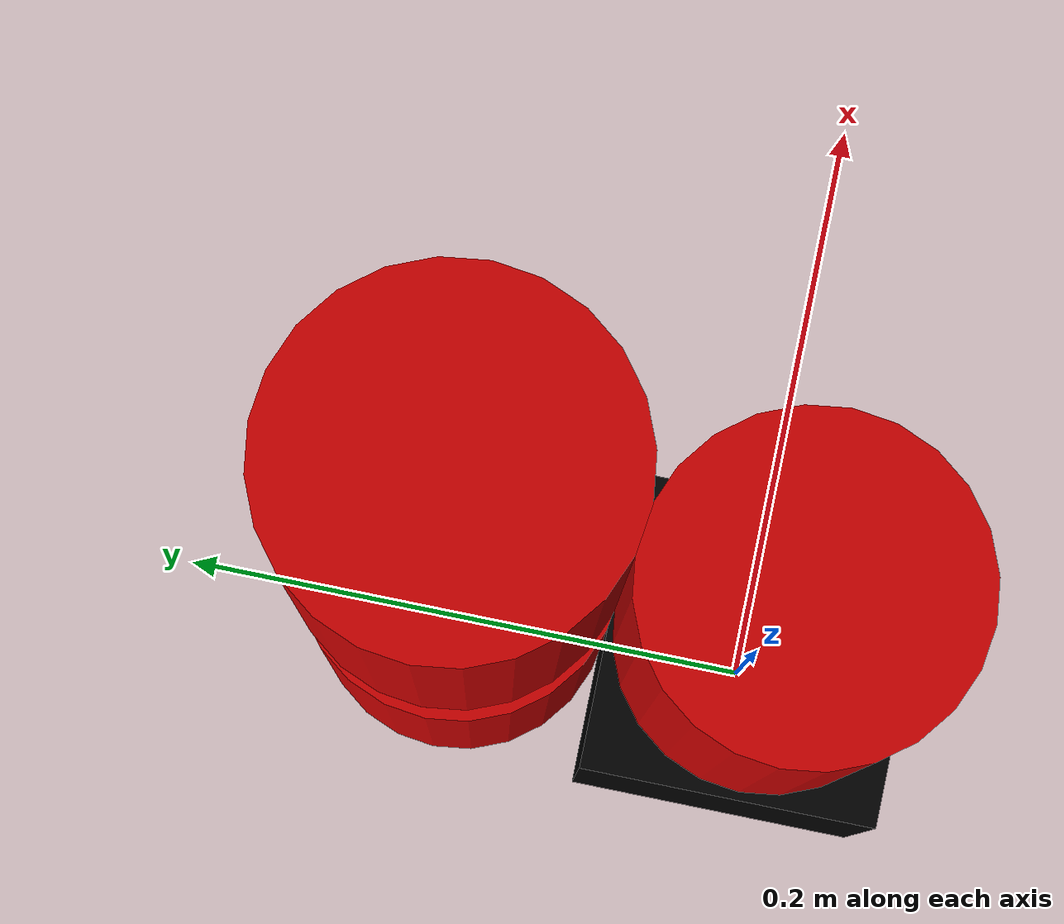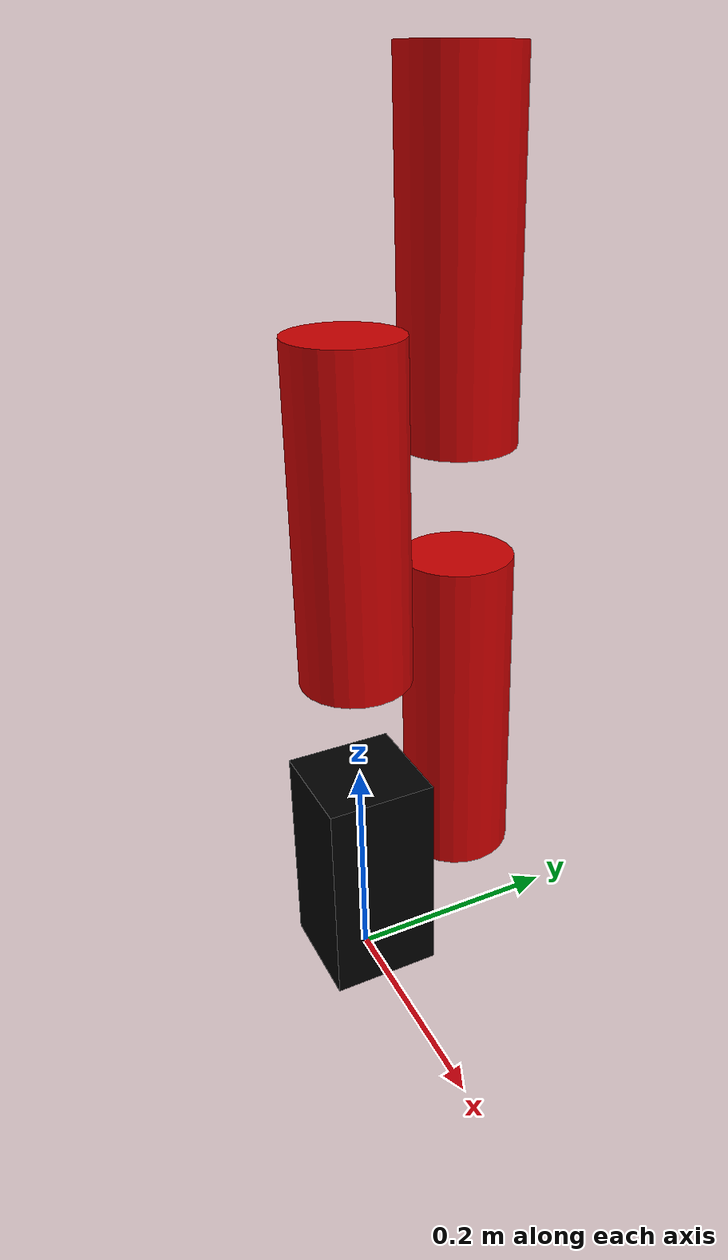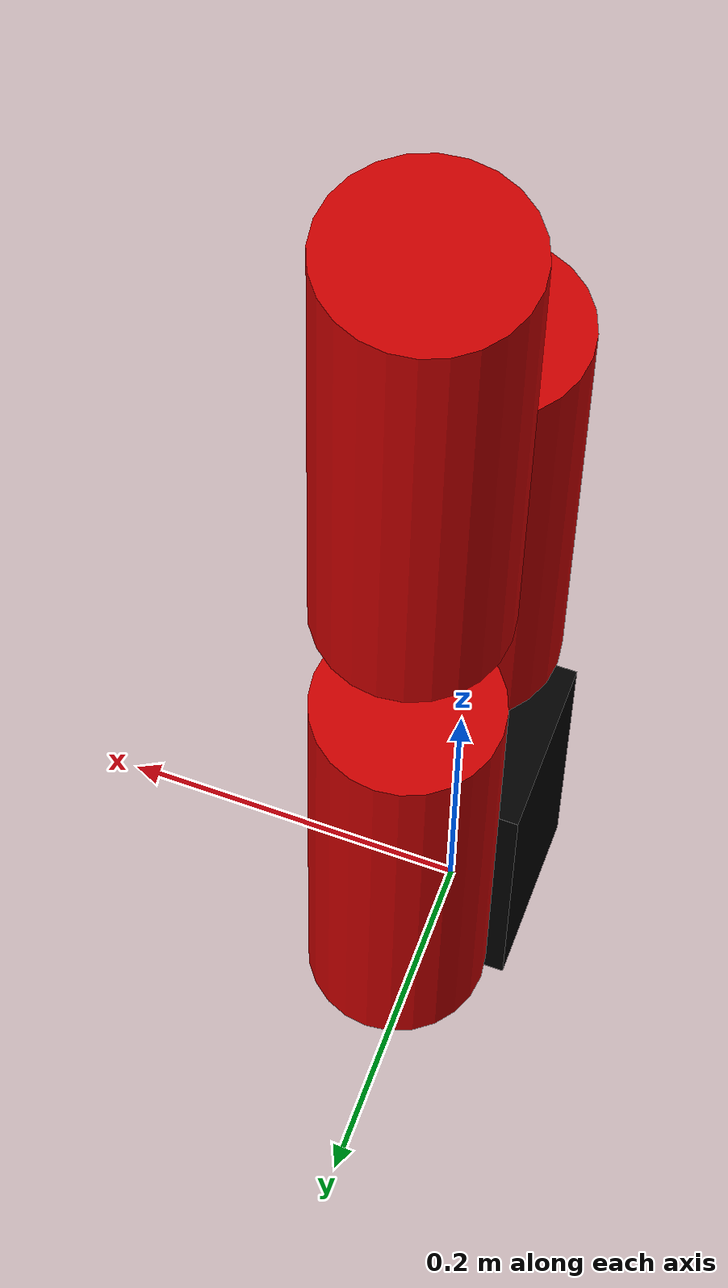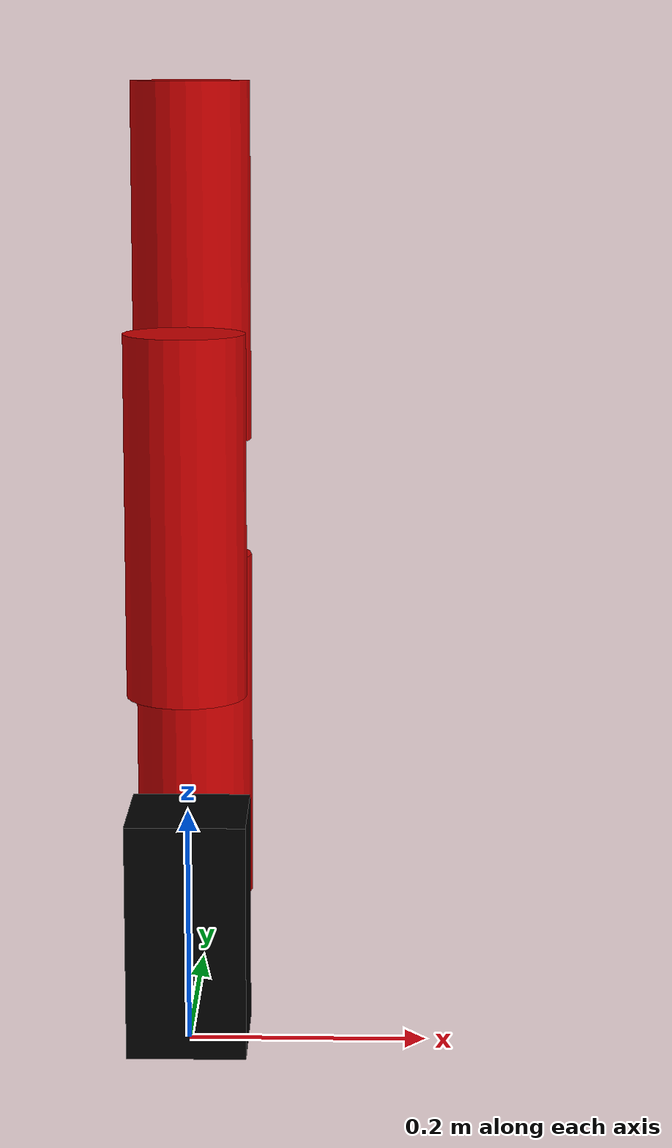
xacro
<?xml version="1.0" encoding="utf-8"?>
<robot name="threelink" xmlns:xacro="http://wiki.ros.org/xacro">
  <material name="red">
    <color rgba="0.8 0.0 0.0 1.0"/>
  </material>
  <material name="black">
    <color rgba="0.0 0.0 0.0 1.0"/>
  </material>

  <xacro:macro name="uniform_box_inertia" params="mass Lx Ly Lz">
    <inertia ixx="${mass * (Ly**2 + Lz**2) / 12.0}" ixy="0.0" ixz="0.0"
      iyy="${mass * (Lx**2 + Lz**2) / 12.0}" iyz="0.0"
      izz="${mass * (Lx**2 + Ly**2) / 12.0}" />
  </xacro:macro>

  <xacro:macro name="uniform_cylinder_inertia" params="mass r h">
    <inertia ixx="${mass * (3*r**2 + h**2) / 12.0}" ixy="0.0" ixz="0.0"
      iyy="${mass * (3*r**2 + h**2) / 12.0}" iyz="0.0"
      izz="${mass * r**2 / 2.0}" />
  </xacro:macro>

  <link name="base_link">
    <inertial>
      <mass value="1"/>
      <xacro:uniform_box_inertia mass="1" Lx="0.1" Ly="0.1" Lz="0.2"/>
      <origin rpy="0 0 0" xyz="0 0 0.1"/>
    </inertial>

    <visual>
      <origin rpy="0 0 0" xyz="0 0 0.1"/>
      <geometry>
        <box size="0.1 0.1 0.2"/>
      </geometry>
      <material name="black"/>
    </visual>

    <collision>
      <origin rpy="0 0 0" xyz="0 0 0.1"/>
      <geometry>
        <box size="0.1 0.1 0.2"/>
      </geometry>
    </collision>
  </link>

	<joint name="link1_joint" type="revolute">
    <parent link="base_link"/>
    <child link="link1"/>
    <axis xyz="0 1 0"/>
    <origin rpy="0 0 0" xyz="0 0.1 0.15"/>
    <limit effort="100.0" velocity="1000.0"/>
  </joint>

	<link name="link1">
    <inertial>
      <mass value="1"/>
      <xacro:uniform_cylinder_inertia mass="1" r="0.05" h="0.3"/>
      <origin rpy="0 0 0" xyz="0 0 0.1"/>
    </inertial>

    <visual>
      <origin rpy="0 0 0" xyz="0 0 0.1"/>
      <geometry>
        <cylinder radius="0.05" length="0.3"/>
      </geometry>
      <material name="red"/>
    </visual>

    <collision>
      <origin rpy="0 0 0" xyz="0 0 0.1"/>
      <geometry>
        <cylinder radius="0.05" length="0.3"/>
      </geometry>
    </collision>
  </link>

	<joint name="link2_joint" type="revolute">
    <parent link="link1"/>
    <child link="link2"/>
    <axis xyz="0 1 0"/>
    <origin rpy="0 0 0" xyz="0 -0.1 0.2"/>
    <limit effort="100.0" velocity="1000.0"/>
  </joint>

	<link name="link2">
    <inertial>
      <mass value="1"/>
      <xacro:uniform_cylinder_inertia mass="1" r="0.05" h="0.3"/>
      <origin rpy="0 0 0" xyz="0 0 0.1"/>
    </inertial>

    <visual>
      <origin rpy="0 0 0" xyz="0 0 0.1"/>
      <geometry>
        <cylinder radius="0.05" length="0.3"/>
      </geometry>
      <material name="red"/>
    </visual>

    <collision>
      <origin rpy="0 0 0" xyz="0 0 0.1"/>
      <geometry>
        <cylinder radius="0.05" length="0.3"/>
      </geometry>
    </collision>
  </link>

	<joint name="link3_joint" type="revolute">
    <parent link="link2"/>
    <child link="link3"/>
    <axis xyz="0 1 0"/>
    <origin rpy="0 0 0" xyz="0 0.1 0.2"/>
    <limit effort="100.0" velocity="1000.0"/>
  </joint>

	<link name="link3">
    <inertial>
      <mass value="1"/>
      <xacro:uniform_cylinder_inertia mass="1" r="0.05" h="0.3"/>
      <origin rpy="0 0 0" xyz="0 0 0.1"/>
    </inertial>

    <visual>
      <origin rpy="0 0 0" xyz="0 0 0.1"/>
      <geometry>
        <cylinder radius="0.05" length="0.3"/>
      </geometry>
      <material name="red"/>
    </visual>

    <collision>
      <origin rpy="0 0 0" xyz="0 0 0.1"/>
      <geometry>
        <cylinder radius="0.05" length="0.3"/>
      </geometry>
    </collision>
  </link>
</robot>
